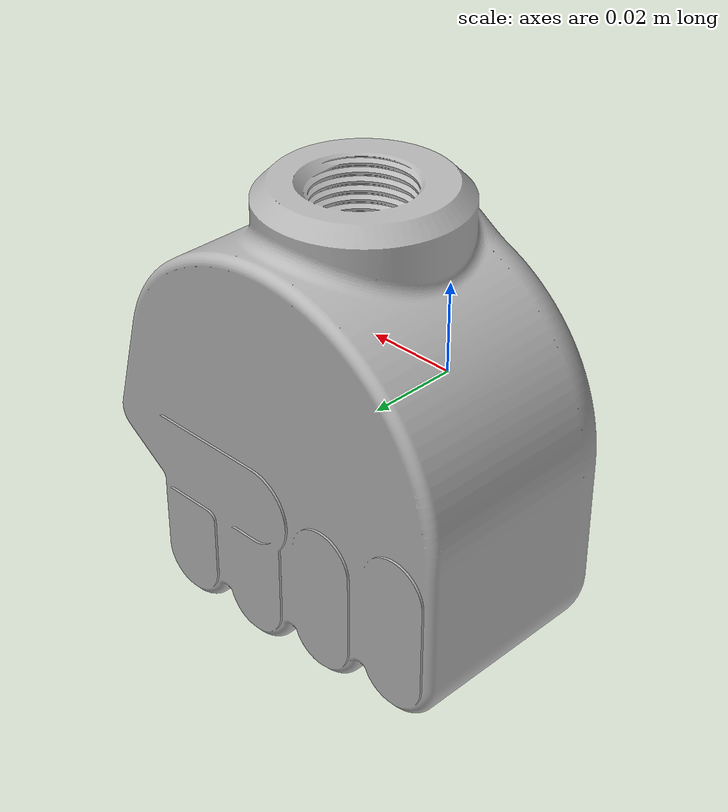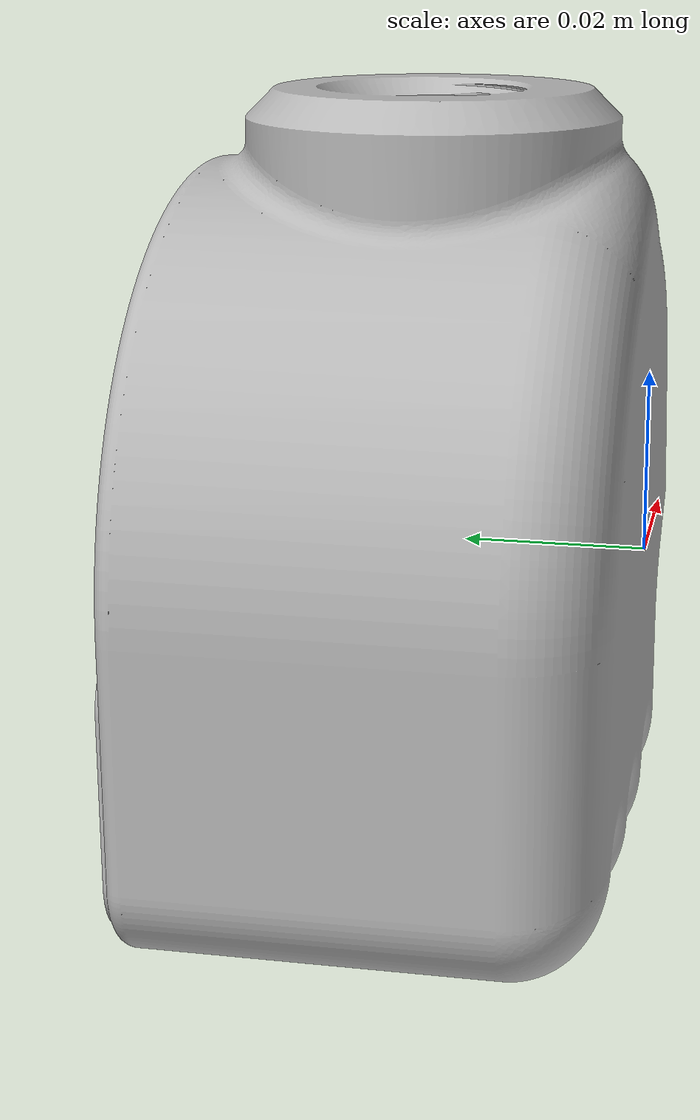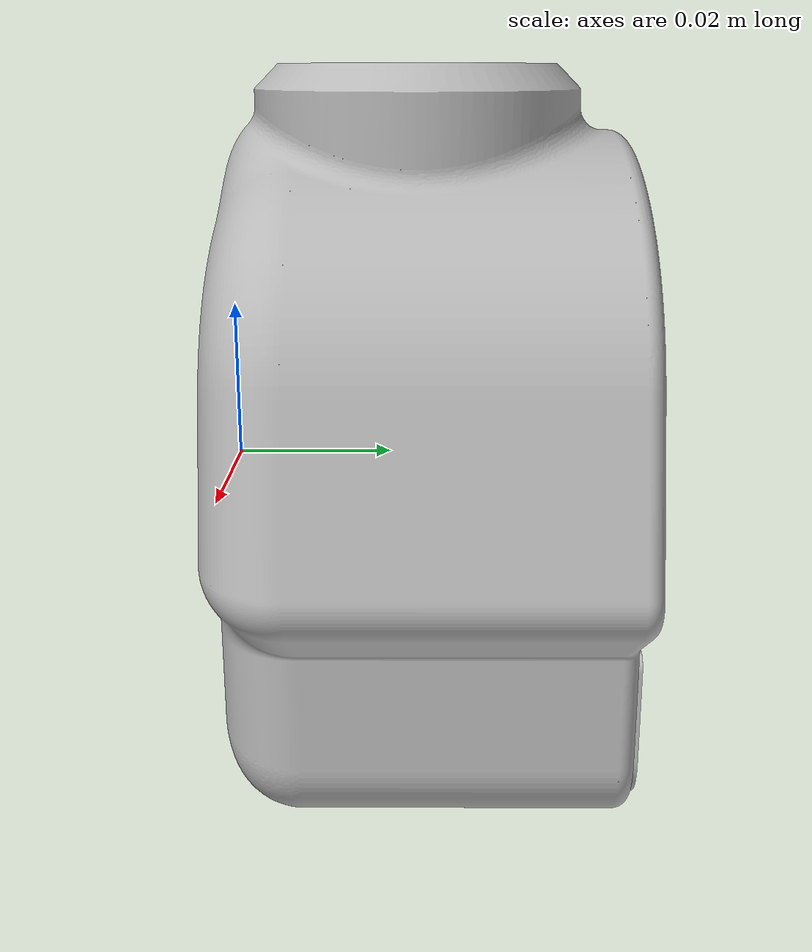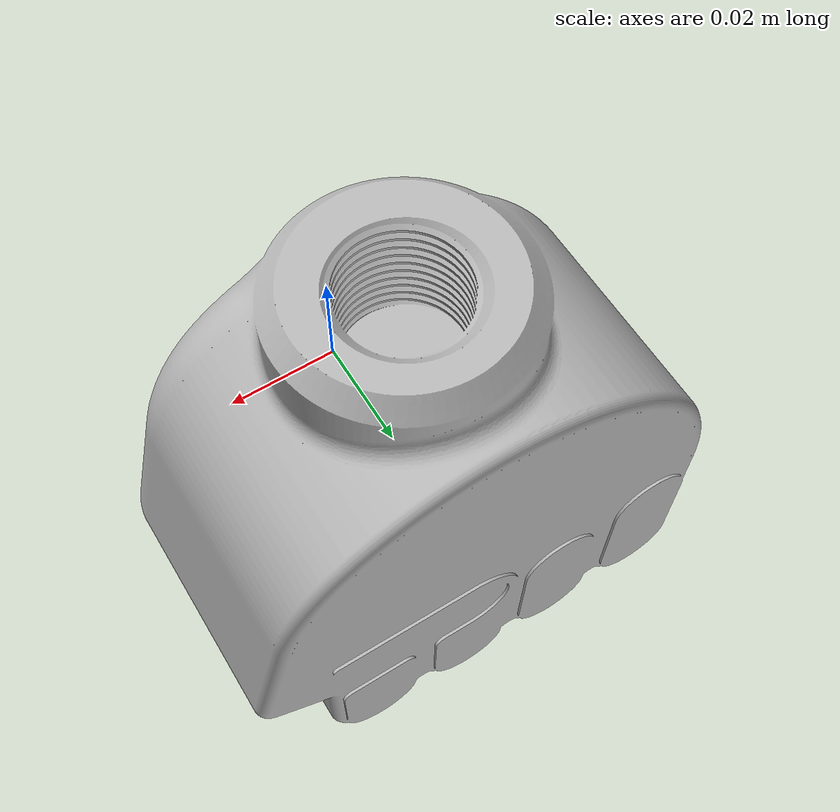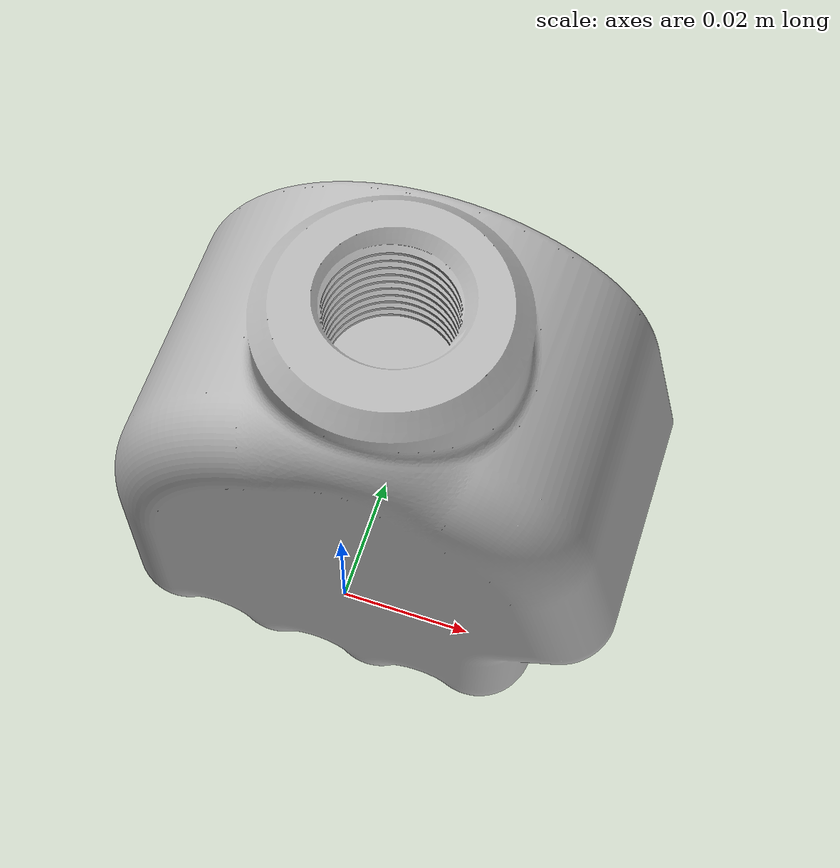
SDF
<?xml version="1.0" ?>
<sdf version="1.6">
  <model name="fist">
    <static>false</static>
    <link name="link">
      <inertial>
        <mass>0.2</mass>
        <inertia>
          <ixx>0.0001</ixx>
          <ixy>0</ixy>
          <ixz>0</ixz>
          <iyy>0.0001</iyy>
          <iyz>0</iyz>
          <izz>0.0001</izz>
        </inertia>
      </inertial>
      <collision name="collision">
        <geometry>
          <mesh>
            <uri>model://fist/meshes/Fist.stl</uri>
            <scale>0.001 0.001 0.001</scale>
          </mesh>
        </geometry>
      </collision>
      <visual name="visual">
        <geometry>
          <mesh>
            <uri>model://fist/meshes/Fist.stl</uri>
            <scale>0.001 0.001 0.001</scale>
          </mesh>
        </geometry>
      </visual>
    </link>
  </model>
</sdf>
